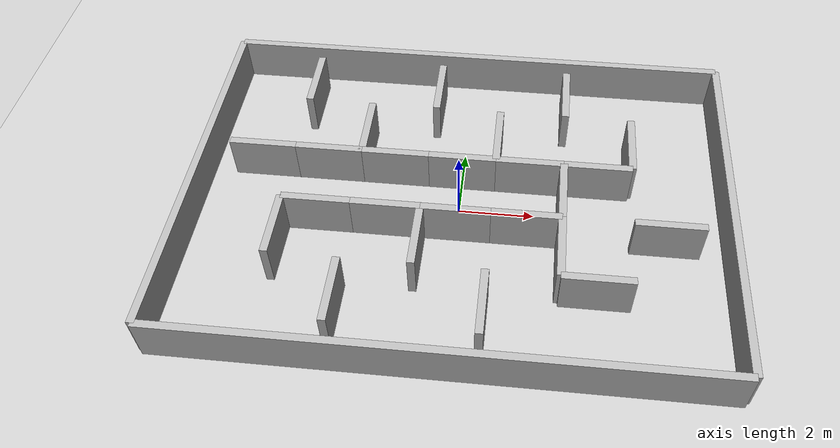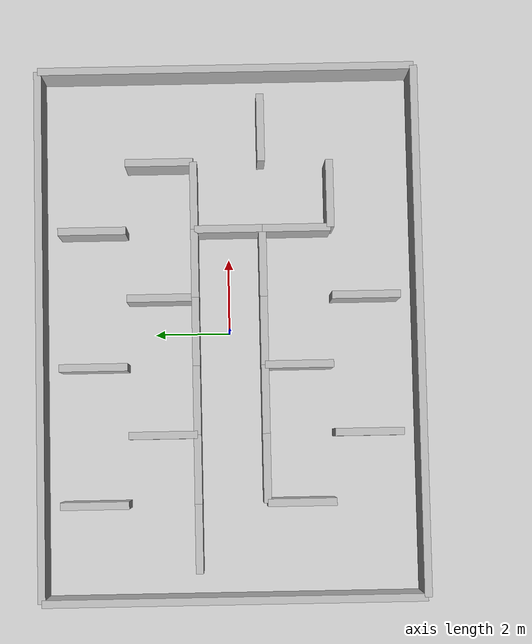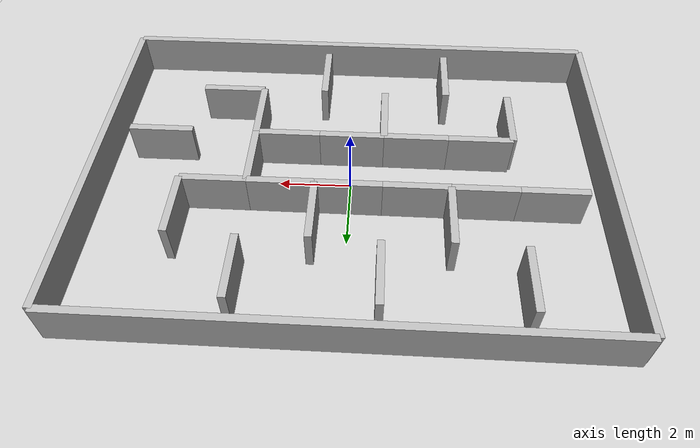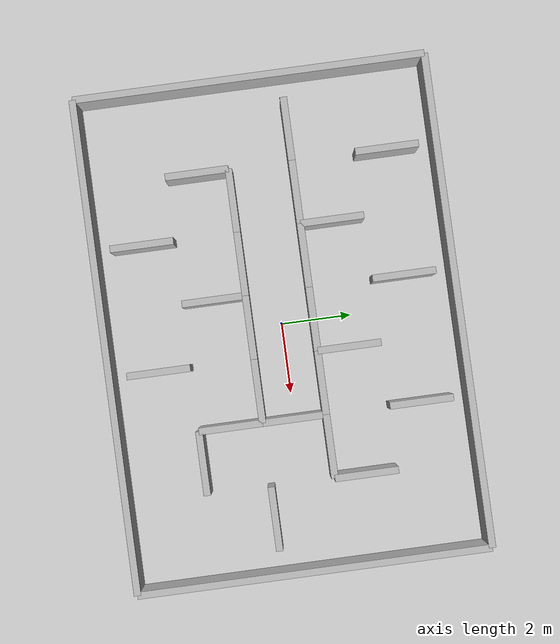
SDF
<?xml version="1.0" ?>
<sdf version="1.6">
  <world name="labyrinth_turns">
    <physics type="ode">
      <max_step_size>0.001</max_step_size>
      <real_time_factor>1.0</real_time_factor>
      <real_time_update_rate>1000</real_time_update_rate>
    </physics>

    <include><uri>model://ground_plane</uri></include>
    <include><uri>model://sun</uri></include>

    <scene><shadows>false</shadows></scene>

    <model name="outer_north"><static>true</static><pose>0.0 5.0 0.6 0 0 0</pose><link name="link"><collision name="collision"><geometry><box><size>14.0 0.2 1.2</size></box></geometry></collision><visual name="visual"><geometry><box><size>14.0 0.2 1.2</size></box></geometry></visual></link></model>
    <model name="outer_south"><static>true</static><pose>0.0 -5.0 0.6 0 0 0</pose><link name="link"><collision name="collision"><geometry><box><size>14.0 0.2 1.2</size></box></geometry></collision><visual name="visual"><geometry><box><size>14.0 0.2 1.2</size></box></geometry></visual></link></model>
    <model name="outer_east"><static>true</static><pose>7.0 0.0 0.6 0 0 0</pose><link name="link"><collision name="collision"><geometry><box><size>0.2 10.0 1.2</size></box></geometry></collision><visual name="visual"><geometry><box><size>0.2 10.0 1.2</size></box></geometry></visual></link></model>
    <model name="outer_west"><static>true</static><pose>-7.0 0.0 0.6 0 0 0</pose><link name="link"><collision name="collision"><geometry><box><size>0.2 10.0 1.2</size></box></geometry></collision><visual name="visual"><geometry><box><size>0.2 10.0 1.2</size></box></geometry></visual></link></model>
    <model name="v_0_0"><static>true</static><pose>-4.5 3.6 0.6 0 0 0</pose><link name="link"><collision name="collision"><geometry><box><size>0.2 1.8 1.2</size></box></geometry></collision><visual name="visual"><geometry><box><size>0.2 1.8 1.2</size></box></geometry></visual></link></model>
    <model name="v_0_3"><static>true</static><pose>-4.5 -1.8 0.6 0 0 0</pose><link name="link"><collision name="collision"><geometry><box><size>0.2 1.8 1.2</size></box></geometry></collision><visual name="visual"><geometry><box><size>0.2 1.8 1.2</size></box></geometry></visual></link></model>
    <model name="v_1_1"><static>true</static><pose>-2.7 1.8 0.6 0 0 0</pose><link name="link"><collision name="collision"><geometry><box><size>0.2 1.8 1.2</size></box></geometry></collision><visual name="visual"><geometry><box><size>0.2 1.8 1.2</size></box></geometry></visual></link></model>
    <model name="v_1_4"><static>true</static><pose>-2.7 -3.6 0.6 0 0 0</pose><link name="link"><collision name="collision"><geometry><box><size>0.2 1.8 1.2</size></box></geometry></collision><visual name="visual"><geometry><box><size>0.2 1.8 1.2</size></box></geometry></visual></link></model>
    <model name="v_2_0"><static>true</static><pose>-0.9 3.6 0.6 0 0 0</pose><link name="link"><collision name="collision"><geometry><box><size>0.2 1.8 1.2</size></box></geometry></collision><visual name="visual"><geometry><box><size>0.2 1.8 1.2</size></box></geometry></visual></link></model>
    <model name="v_2_3"><static>true</static><pose>-0.9 -1.8 0.6 0 0 0</pose><link name="link"><collision name="collision"><geometry><box><size>0.2 1.8 1.2</size></box></geometry></collision><visual name="visual"><geometry><box><size>0.2 1.8 1.2</size></box></geometry></visual></link></model>
    <model name="v_3_1"><static>true</static><pose>0.9 1.8 0.6 0 0 0</pose><link name="link"><collision name="collision"><geometry><box><size>0.2 1.8 1.2</size></box></geometry></collision><visual name="visual"><geometry><box><size>0.2 1.8 1.2</size></box></geometry></visual></link></model>
    <model name="v_3_4"><static>true</static><pose>0.9 -3.6 0.6 0 0 0</pose><link name="link"><collision name="collision"><geometry><box><size>0.2 1.8 1.2</size></box></geometry></collision><visual name="visual"><geometry><box><size>0.2 1.8 1.2</size></box></geometry></visual></link></model>
    <model name="v_4_0"><static>true</static><pose>2.7 3.6 0.6 0 0 0</pose><link name="link"><collision name="collision"><geometry><box><size>0.2 1.8 1.2</size></box></geometry></collision><visual name="visual"><geometry><box><size>0.2 1.8 1.2</size></box></geometry></visual></link></model>
    <model name="v_4_2"><static>true</static><pose>2.7 0.0 0.6 0 0 0</pose><link name="link"><collision name="collision"><geometry><box><size>0.2 1.8 1.2</size></box></geometry></collision><visual name="visual"><geometry><box><size>0.2 1.8 1.2</size></box></geometry></visual></link></model>
    <model name="v_4_3"><static>true</static><pose>2.7 -1.8 0.6 0 0 0</pose><link name="link"><collision name="collision"><geometry><box><size>0.2 1.8 1.2</size></box></geometry></collision><visual name="visual"><geometry><box><size>0.2 1.8 1.2</size></box></geometry></visual></link></model>
    <model name="v_5_1"><static>true</static><pose>4.5 1.8 0.6 0 0 0</pose><link name="link"><collision name="collision"><geometry><box><size>0.2 1.8 1.2</size></box></geometry></collision><visual name="visual"><geometry><box><size>0.2 1.8 1.2</size></box></geometry></visual></link></model>
    <model name="h_0_1"><static>true</static><pose>-5.4 0.9 0.6 0 0 0</pose><link name="link"><collision name="collision"><geometry><box><size>1.8 0.2 1.2</size></box></geometry></collision><visual name="visual"><geometry><box><size>1.8 0.2 1.2</size></box></geometry></visual></link></model>
    <model name="h_1_1"><static>true</static><pose>-3.6 0.9 0.6 0 0 0</pose><link name="link"><collision name="collision"><geometry><box><size>1.8 0.2 1.2</size></box></geometry></collision><visual name="visual"><geometry><box><size>1.8 0.2 1.2</size></box></geometry></visual></link></model>
    <model name="h_1_2"><static>true</static><pose>-3.6 -0.9 0.6 0 0 0</pose><link name="link"><collision name="collision"><geometry><box><size>1.8 0.2 1.2</size></box></geometry></collision><visual name="visual"><geometry><box><size>1.8 0.2 1.2</size></box></geometry></visual></link></model>
    <model name="h_2_1"><static>true</static><pose>-1.8 0.9 0.6 0 0 0</pose><link name="link"><collision name="collision"><geometry><box><size>1.8 0.2 1.2</size></box></geometry></collision><visual name="visual"><geometry><box><size>1.8 0.2 1.2</size></box></geometry></visual></link></model>
    <model name="h_2_2"><static>true</static><pose>-1.8 -0.9 0.6 0 0 0</pose><link name="link"><collision name="collision"><geometry><box><size>1.8 0.2 1.2</size></box></geometry></collision><visual name="visual"><geometry><box><size>1.8 0.2 1.2</size></box></geometry></visual></link></model>
    <model name="h_3_1"><static>true</static><pose>0.0 0.9 0.6 0 0 0</pose><link name="link"><collision name="collision"><geometry><box><size>1.8 0.2 1.2</size></box></geometry></collision><visual name="visual"><geometry><box><size>1.8 0.2 1.2</size></box></geometry></visual></link></model>
    <model name="h_3_2"><static>true</static><pose>0.0 -0.9 0.6 0 0 0</pose><link name="link"><collision name="collision"><geometry><box><size>1.8 0.2 1.2</size></box></geometry></collision><visual name="visual"><geometry><box><size>1.8 0.2 1.2</size></box></geometry></visual></link></model>
    <model name="h_4_1"><static>true</static><pose>1.8 0.9 0.6 0 0 0</pose><link name="link"><collision name="collision"><geometry><box><size>1.8 0.2 1.2</size></box></geometry></collision><visual name="visual"><geometry><box><size>1.8 0.2 1.2</size></box></geometry></visual></link></model>
    <model name="h_4_2"><static>true</static><pose>1.8 -0.9 0.6 0 0 0</pose><link name="link"><collision name="collision"><geometry><box><size>1.8 0.2 1.2</size></box></geometry></collision><visual name="visual"><geometry><box><size>1.8 0.2 1.2</size></box></geometry></visual></link></model>
    <model name="h_5_1"><static>true</static><pose>3.6 0.9 0.6 0 0 0</pose><link name="link"><collision name="collision"><geometry><box><size>1.8 0.2 1.2</size></box></geometry></collision><visual name="visual"><geometry><box><size>1.8 0.2 1.2</size></box></geometry></visual></link></model>
    <model name="h_5_3"><static>true</static><pose>3.6 -2.7 0.6 0 0 0</pose><link name="link"><collision name="collision"><geometry><box><size>1.8 0.2 1.2</size></box></geometry></collision><visual name="visual"><geometry><box><size>1.8 0.2 1.2</size></box></geometry></visual></link></model>
    <model name="h_6_2"><static>true</static><pose>5.4 -0.9 0.6 0 0 0</pose><link name="link"><collision name="collision"><geometry><box><size>1.8 0.2 1.2</size></box></geometry></collision><visual name="visual"><geometry><box><size>1.8 0.2 1.2</size></box></geometry></visual></link></model>
  </world>
</sdf>
